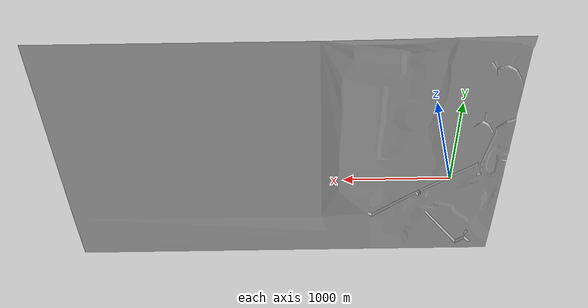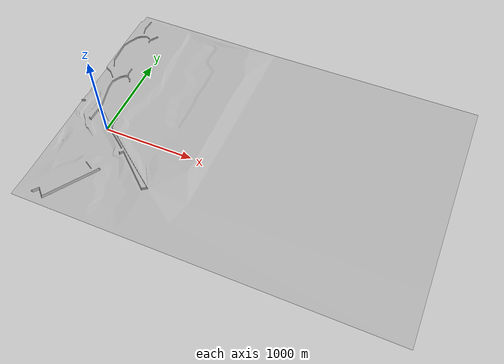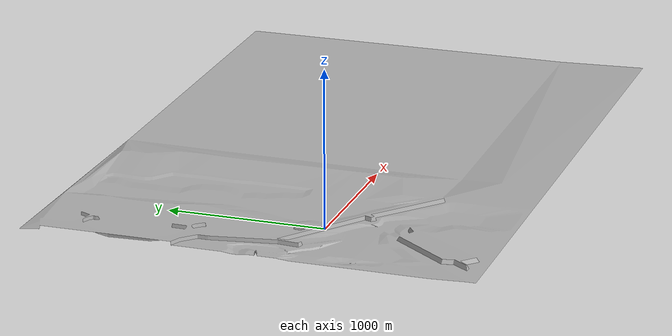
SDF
<?xml version="1.0" ?>
<sdf version="1.5">
  <model name="mangalia_terrain">
    <static>true</static>
    <link name="link">
      <collision name="seabed">
        <pose>0 0 -5 0 0 0</pose>
        <geometry>
          <mesh>
            <uri>model://mangalia/meshes/MangaliaTerrain.dae</uri>
            <scale>1.0 1.0 2.0</scale>
          </mesh>
        </geometry>
      </collision>

      <visual name="seabed">
        <cast_shadows>false</cast_shadows>
        <pose>0 0 -5 0 0 0</pose>
        <geometry>
          <mesh>
            <uri>model://mangalia/meshes/MangaliaTerrain.dae</uri>
            <scale>1.0 1.0 2.0</scale>
          </mesh>
        </geometry>
      </visual>
    </link>

  </model>
</sdf>
